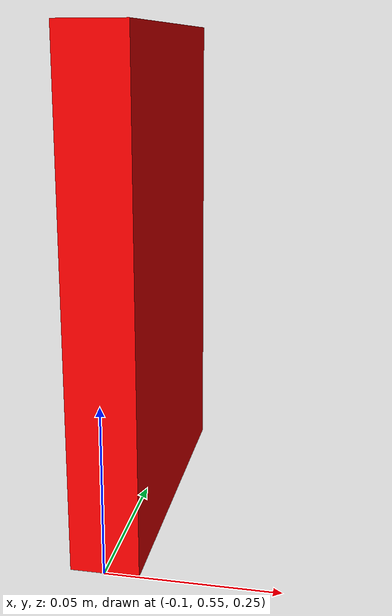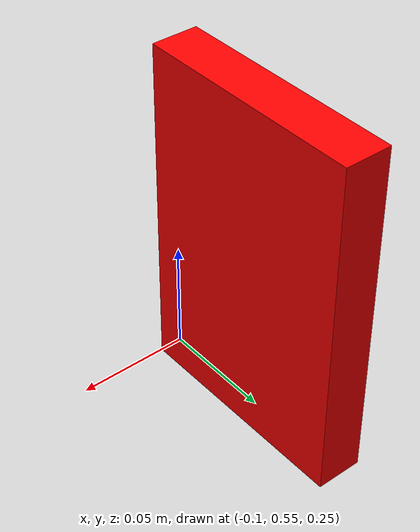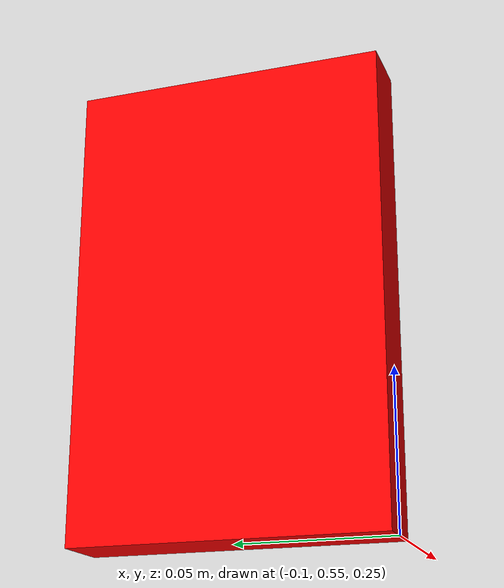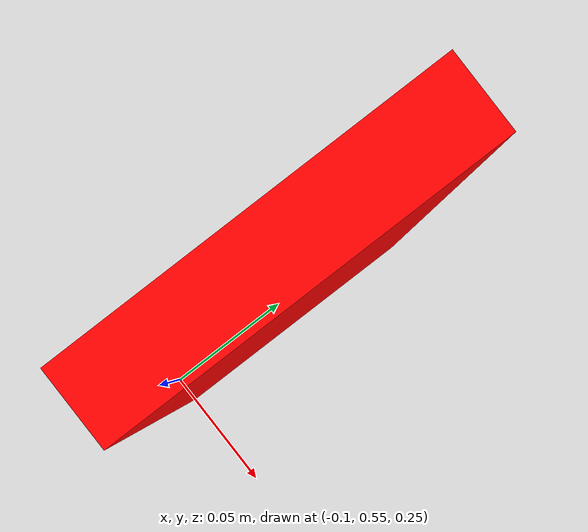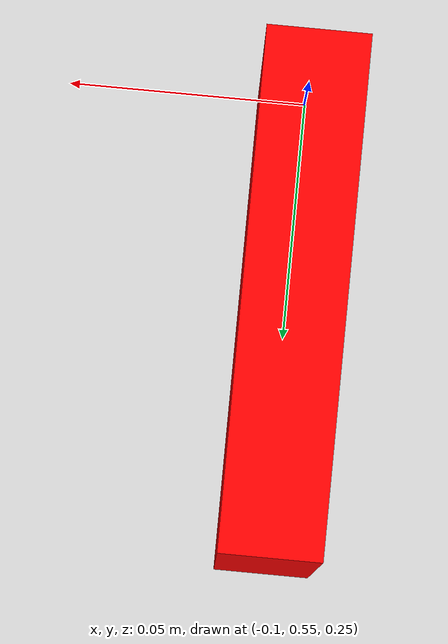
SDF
<?xml version="1.0" ?>
<sdf version="1.6">
  <model name="test_box3">
    <static>false</static>
    <pose>-0.1 0.6 0.325 0 0 0</pose>
    <link name="box_link">
      <collision name="collision">
        <geometry>
          <box><size>0.02 0.1 0.15</size></box>
        </geometry>
      </collision>
      <visual name="visual">
        <geometry>
          <box><size>0.02 0.1 0.15</size></box>
        </geometry>
        <material><ambient>1 0 0 1</ambient></material>
      </visual>
      <inertial><mass>1.0</mass></inertial>
    </link>
  </model>
</sdf>
